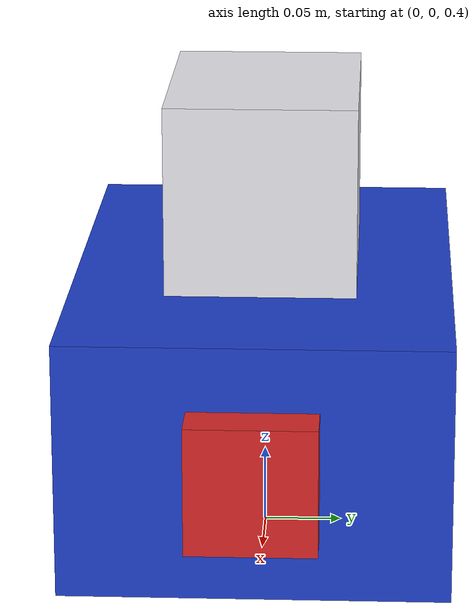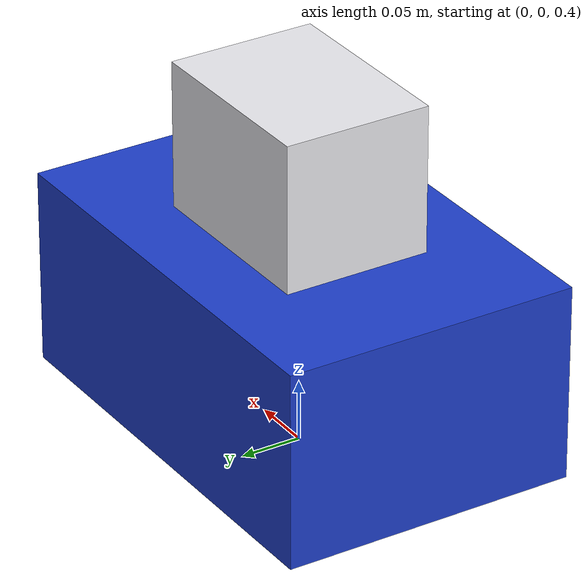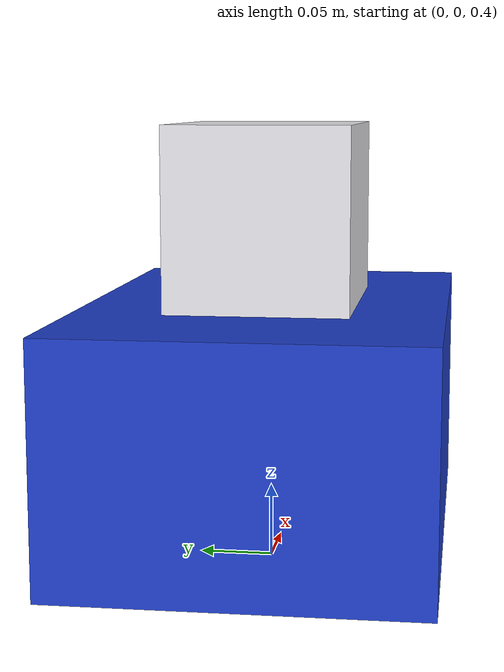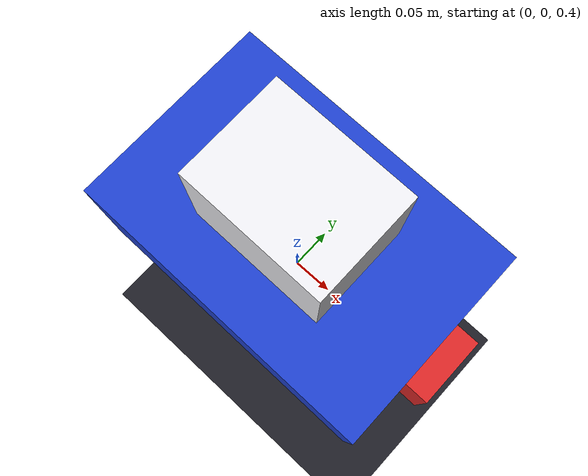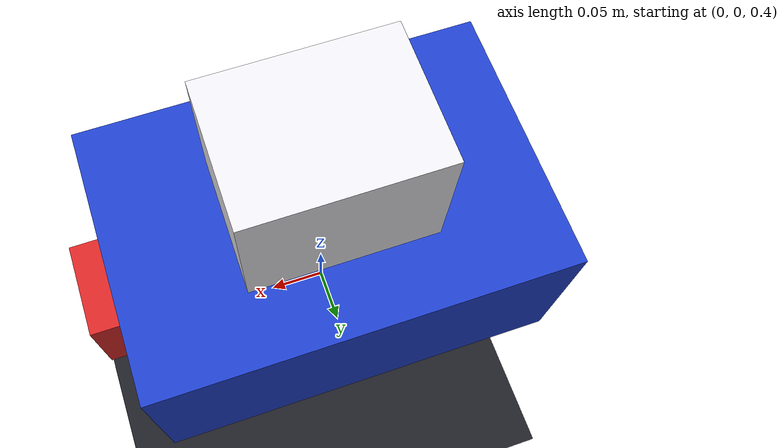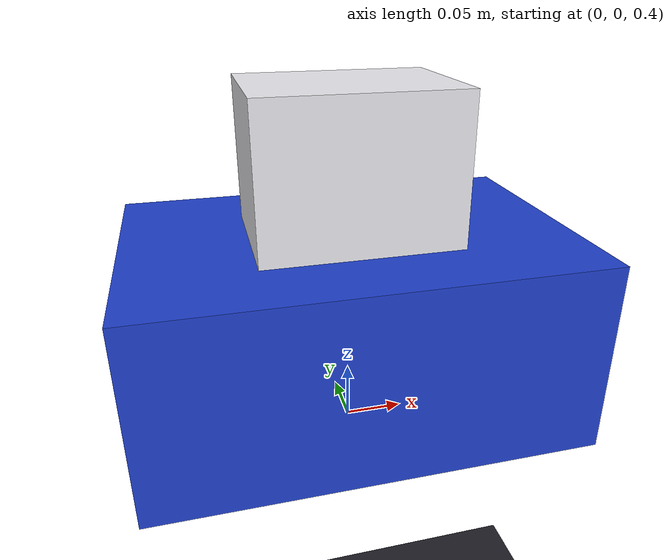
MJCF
<mujoco model="boxbot">
  <compiler angle="degree" coordinate="local"/>
  <option timestep="0.002" gravity="0 0 -9.81"/>

  <default>
    <geom friction="1.2 0.3 0.1" density="400"/>
  </default>

  <worldbody>
    <light pos="0 0 6" dir="0 0 -1" diffuse="1 1 1" />
    <geom name="floor" type="plane" size="10 10 0.1" rgba="0.12 0.12 0.15 1"/>

    <body name="box" pos="0 0 0.5">
      <freejoint/>
      <geom type="box" size="0.18 0.12 0.08" rgba="0.12 0.25 0.80 1"/>
      <geom type="box" pos="0 0 0.14" size="0.08 0.06 0.06" rgba="0.92 0.92 0.94 1"/>
      <geom type="box" pos="0.16 0 0.00" size="0.05 0.04 0.04" rgba="0.85 0.15 0.15 1"/>
    </body>
  </worldbody>
</mujoco>
